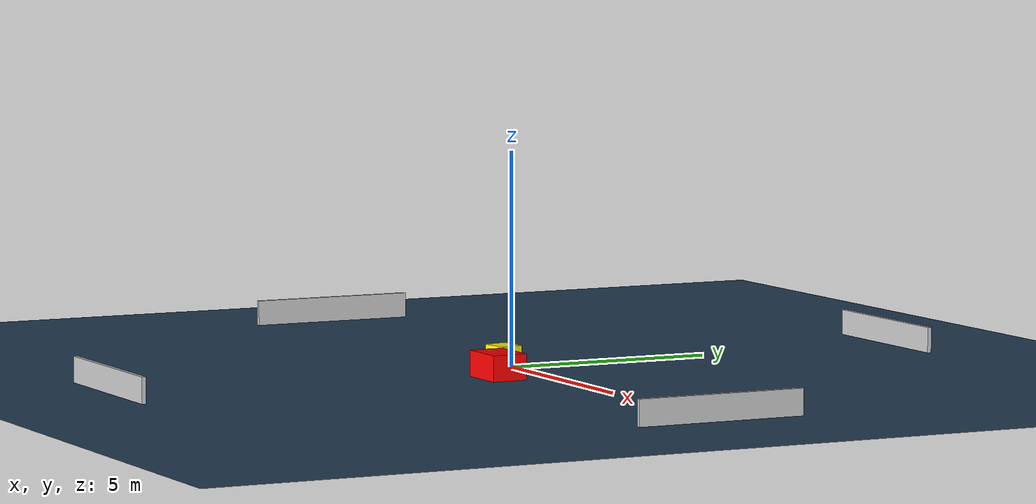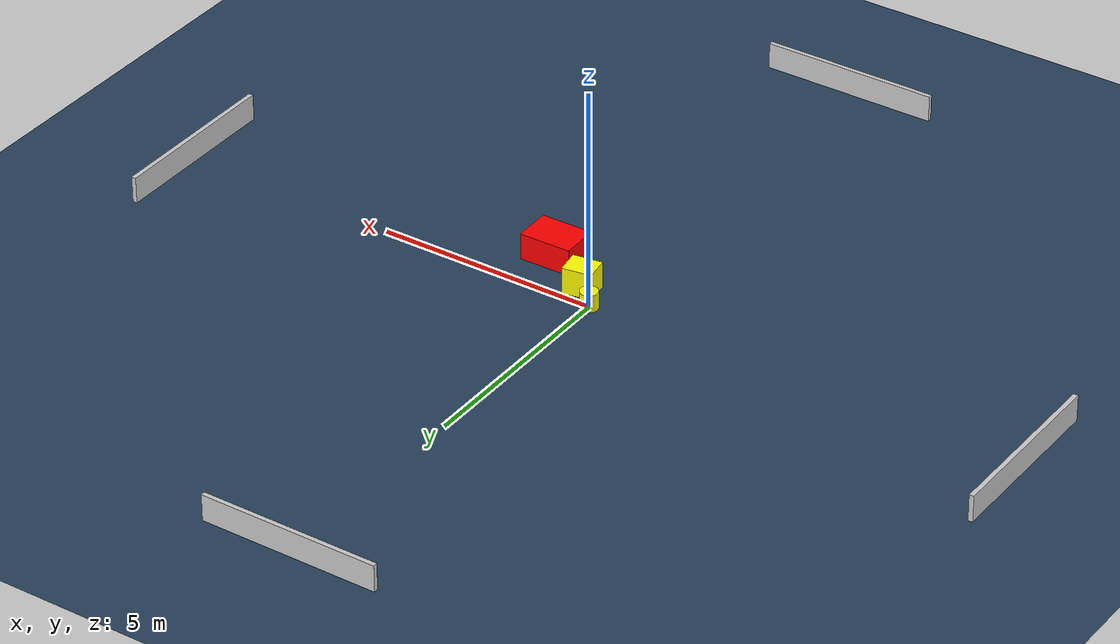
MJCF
<?xml version="1.0" ?>
<mujoco model="generated_environment">
  <option timestep="0.01" integrator="RK4" cone="elliptic"/>
  <default>
    <geom density="1"/>
  </default>
  <asset>
    <texture builtin="gradient" height="3072" name="skybox" rgb1="0.3 0.5 0.7" rgb2="0 0 0" type="skybox" width="512"/>
    <texture builtin="checker" height="300" name="groundplane" rgb1="0.2 0.3 0.4" rgb2="0.1 0.2 0.3" type="2d" width="300"/>
    <material name="groundplane" reflectance="0.2" texrepeat="5 5" texture="groundplane"/>
  </asset>
  <worldbody>
    <light dir="0 0 -1" directional="true" pos="0 0 1.5"/>
    <geom condim="3" friction="0.5 0.005 0.001" material="groundplane" name="floor" pos="0 0 0" size="0 0 0.05" type="plane"/>
    <body name="walls">
      <geom name="wall_1" condim="4" pos="-10.0 0.0 0.3" rgba="0.800000011920929 0.800000011920929 0.800000011920929 1.0" size="0.05 2.0 0.3" type="box"/>
      <geom name="wall_2" condim="4" pos="10.0 0.0 0.3" rgba="0.800000011920929 0.800000011920929 0.800000011920929 1.0" size="0.05 2.0 0.3" type="box"/>
      <geom name="wall_3" condim="4" pos="0.0 -10.0 0.3" rgba="0.800000011920929 0.800000011920929 0.800000011920929 1.0" size="2.0 0.05 0.3" type="box"/>
      <geom name="wall_4" condim="4" pos="0.0 10.0 0.3" rgba="0.800000011920929 0.800000011920929 0.800000011920929 1.0" size="2.0 0.05 0.3" type="box"/>
    </body>
    <body name="robot">
      <joint name="joint_x" type="slide" pos="0 0 0" axis="1 0 0"/>
      <joint name="joint_y" type="slide" pos="0 0 0" axis="0 1 0"/>
      <geom name="robot" type="cylinder" pos="0.0 0.0 0.2" size="0.2 0.2 0.0" mass="5.0" friction="1.0 0.005 0.0001" condim="4" rgba="1.0 1.0 0.0 1.0"/>
    </body>
    <body name="obstacle_1_movable">
      <geom name="obstacle_1_movable" condim="4" pos="0.46763206918322053 -0.4487546438605193 0.3" euler="0 0 188.81980879369942" friction="0.0 0.005 0.001" rgba="1.0 1.0 0.0 1.0" size="0.32940585392334654 0.27405397497466044 0.3" type="box" mass="0.1"/>
      <joint type="free"/>
    </body>
    <body name="obstacle_2_static">
      <geom name="obstacle_2_static" condim="4" pos="1.5785065054568925 -1.13919025320561 0.3" euler="0 0 270.8548141516084" friction="0.0 0.005 0.001" rgba="1.0 0.0 0.0 1.0" size="0.4224118537014816 0.5853586237460404 0.3" type="box"/>
    </body>
  </worldbody>
  <actuator>
    <motor name="actuator_x" joint="joint_x" gear="1" ctrlrange="-1 1"/>
    <motor name="actuator_y" joint="joint_y" gear="1" ctrlrange="-1 1"/>
  </actuator>
</mujoco>
